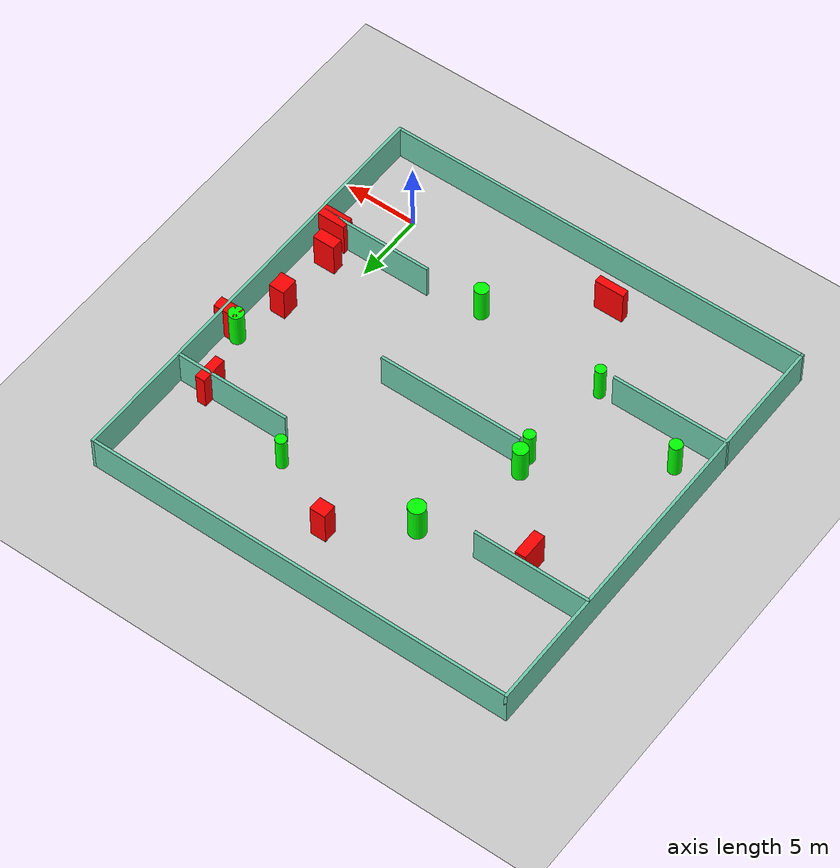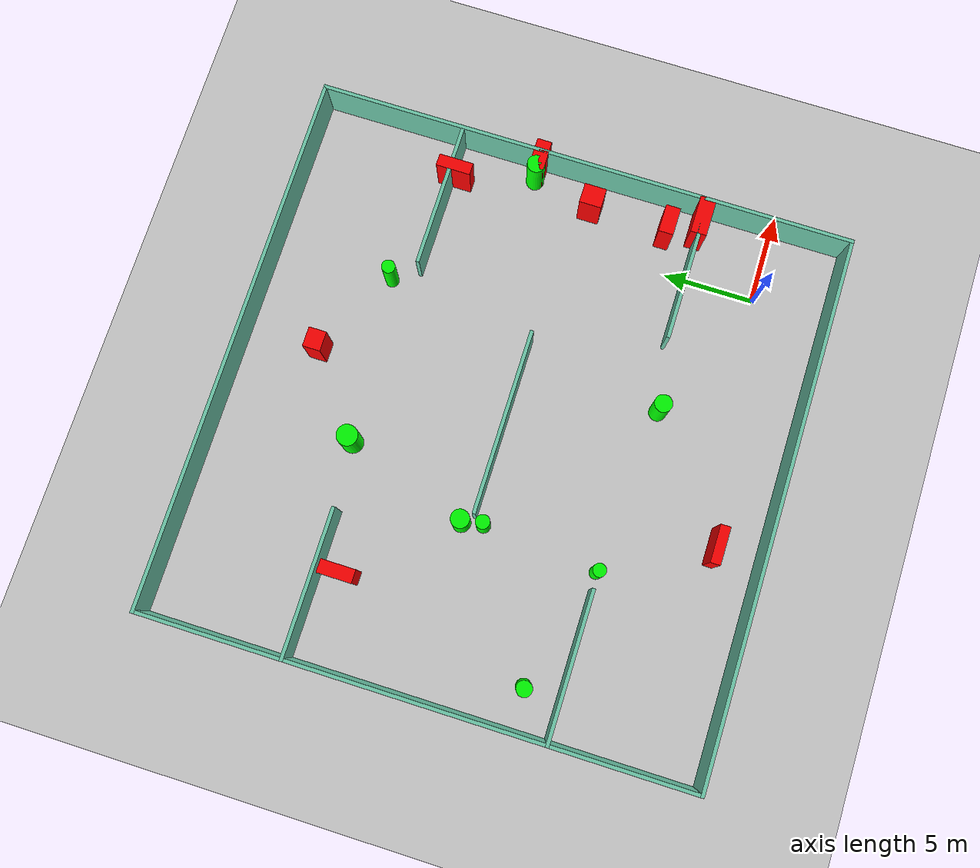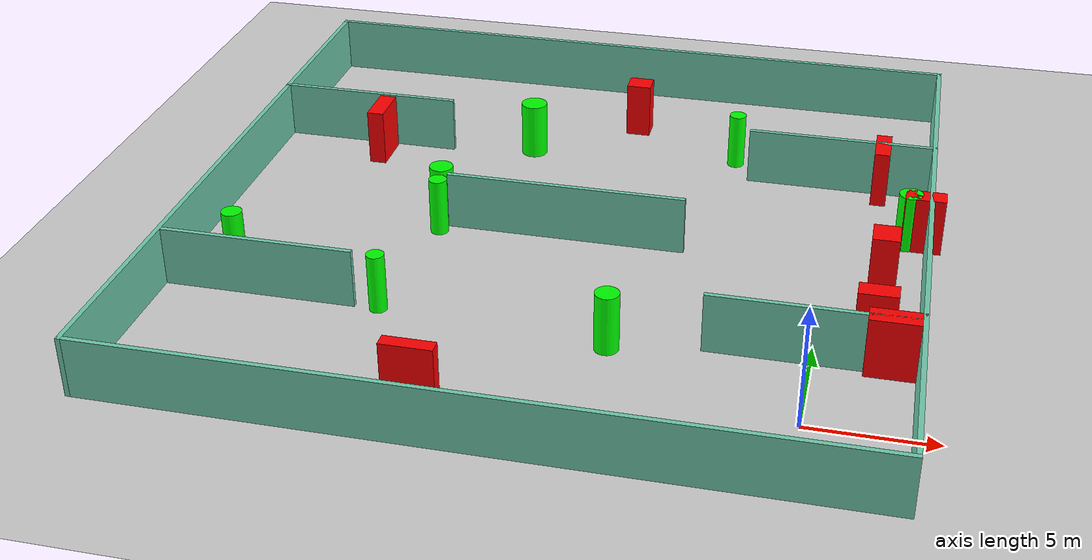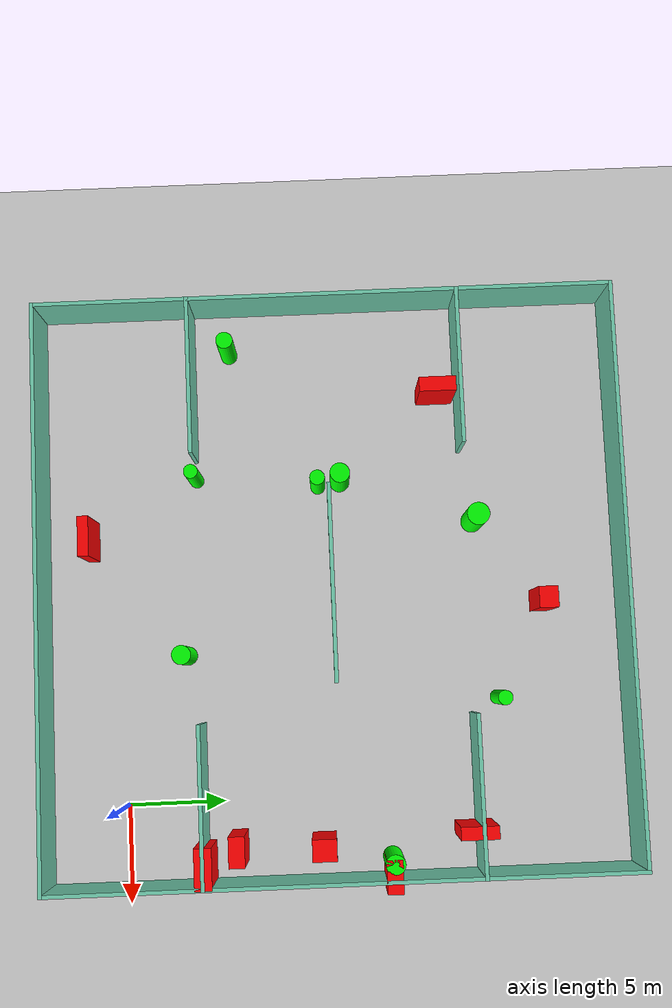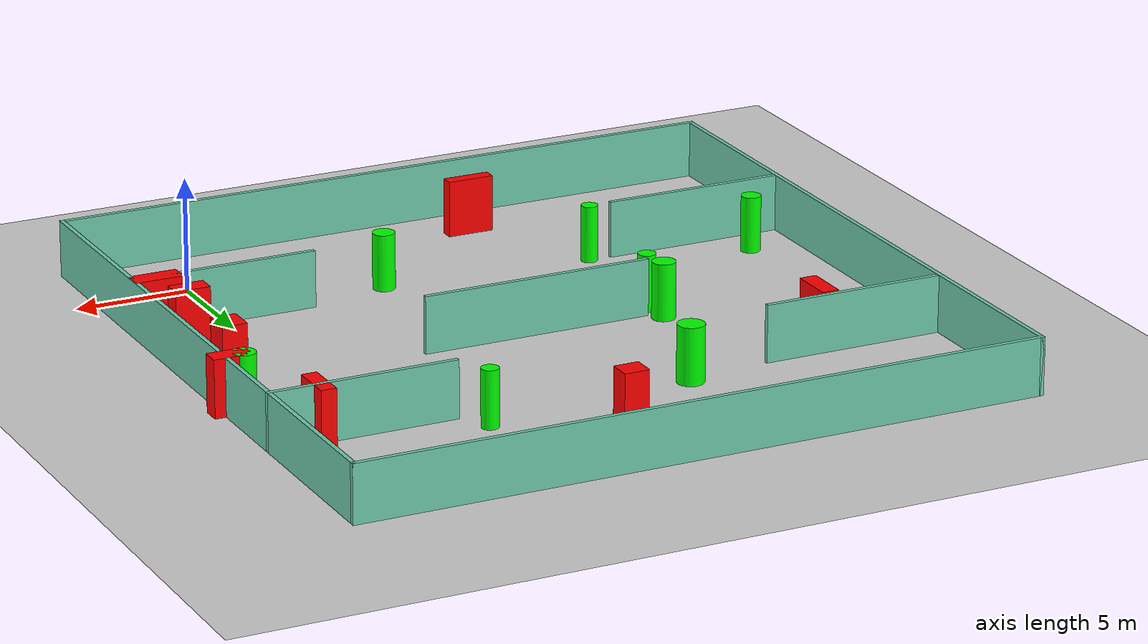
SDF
<sdf version="1.7">
 <world name="default">
  <light name="sun" type="directional">
   <pose>0 0 10 0 -0 0</pose>
   <diffuse>0.8 0.8 0.8 1</diffuse>
   <specular>0.2 0.2 0.2 1</specular>
   <attenuation>
    <range>1000</range>
    <constant>0.9</constant>
    <linear>0.01</linear>
    <quadratic>0.001</quadratic>
   </attenuation>
   <direction>-0.5 0.1 -0.9</direction>
   <spot><inner_angle>0</inner_angle><outer_angle>0</outer_angle><falloff>0</falloff></spot>
  </light>
  <model name="ground_plane">
   <static>1</static>
   <link name="link">
    <collision name="collision">
     <geometry><plane><normal>0 0 1</normal><size>100 100</size></plane></geometry>
     <surface>
      <contact><collide_bitmask>65535</collide_bitmask></contact>
      <friction><ode><mu>100</mu><mu2>50</mu2></ode></friction>
     </surface>
    </collision>
    <visual name="visual">
     <cast_shadows>0</cast_shadows>
     <geometry><plane><normal>0 0 1</normal><size>100 100</size></plane></geometry>
     <material>
      <script><uri>file://media/materials/scripts/gazebo.material</uri><name>Gazebo/Grey</name></script>
     </material>
    </visual>
   </link>
  </model>
  <gravity>0 0 -9.8</gravity>
  <magnetic_field>6e-06 2.3e-05 -4.2e-05</magnetic_field>
  <atmosphere type="adiabatic"/>
  <physics type="ode">
   <max_step_size>0.001</max_step_size>
   <real_time_factor>1</real_time_factor>
   <real_time_update_rate>1000</real_time_update_rate>
  </physics>
  <scene><ambient>0.4 0.4 0.4 1</ambient><background>0.7 0.7 0.7 1</background><shadows>1</shadows></scene>
  <spherical_coordinates>
   <surface_model>EARTH_WGS84</surface_model>
   <latitude_deg>0</latitude_deg>
   <longitude_deg>0</longitude_deg>
   <elevation>0</elevation>
   <heading_deg>0</heading_deg>
  </spherical_coordinates>
  <model name="my_base_walls">
   <link name="Wall_10">
    <collision name="Wall_10_Collision">
     <geometry><box><size>8.2 0.2 2.5</size></box></geometry>
     <pose>0 0 1.25 0 -0 0</pose>
    </collision>
    <visual name="Wall_10_Visual">
     <pose>0 0 1.25 0 -0 0</pose>
     <geometry><box><size>8.2 0.2 2.5</size></box></geometry>
     <material>
      <script><uri>file://media/materials/scripts/gazebo.material</uri><name>Gazebo/Grey</name></script>
      <ambient>0.435294 0.796078 0.67451 1</ambient>
     </material>
     <meta><layer>0</layer></meta>
    </visual>
    <pose>-11 -7 0 0 -0 0</pose>
   </link>
   <link name="Wall_12">
    <collision name="Wall_12_Collision">
     <geometry><box><size>8.2 0.2 2.5</size></box></geometry>
     <pose>0 0 1.25 0 -0 0</pose>
    </collision>
    <visual name="Wall_12_Visual">
     <pose>0 0 1.25 0 -0 0</pose>
     <geometry><box><size>8.2 0.2 2.5</size></box></geometry>
     <material>
      <script><uri>file://media/materials/scripts/gazebo.material</uri><name>Gazebo/Grey</name></script>
      <ambient>0.435294 0.796078 0.67451 1</ambient>
     </material>
     <meta><layer>0</layer></meta>
    </visual>
    <pose>-11 7 0 0 -0 0</pose>
   </link>
   <link name="Wall_14">
    <collision name="Wall_14_Collision">
     <geometry><box><size>8.2 0.2 2.5</size></box></geometry>
     <pose>0 0 1.25 0 -0 0</pose>
    </collision>
    <visual name="Wall_14_Visual">
     <pose>0 0 1.25 0 -0 0</pose>
     <geometry><box><size>8.2 0.2 2.5</size></box></geometry>
     <material>
      <script><uri>file://media/materials/scripts/gazebo.material</uri><name>Gazebo/Grey</name></script>
      <ambient>0.435294 0.796078 0.67451 1</ambient>
     </material>
     <meta><layer>0</layer></meta>
    </visual>
    <pose>11 7 0 0 -0 3.14159</pose>
   </link>
   <link name="Wall_16">
    <collision name="Wall_16_Collision">
     <geometry><box><size>10.2 0.2 2.5</size></box></geometry>
     <pose>0 0 1.25 0 -0 0</pose>
    </collision>
    <visual name="Wall_16_Visual">
     <pose>0 0 1.25 0 -0 0</pose>
     <geometry><box><size>10.2 0.2 2.5</size></box></geometry>
     <material>
      <script><uri>file://media/materials/scripts/gazebo.material</uri><name>Gazebo/Grey</name></script>
      <ambient>0.435294 0.796078 0.67451 1</ambient>
     </material>
     <meta><layer>0</layer></meta>
    </visual>
    <pose>0 0 0 0 -0 3.14159</pose>
   </link>
   <link name="Wall_2">
    <collision name="Wall_2_Collision">
     <geometry><box><size>30.2 0.2 2.5</size></box></geometry>
     <pose>0 0 1.25 0 -0 0</pose>
    </collision>
    <visual name="Wall_2_Visual">
     <pose>0 0 1.25 0 -0 0</pose>
     <geometry><box><size>30.2 0.2 2.5</size></box></geometry>
     <material>
      <script><uri>file://media/materials/scripts/gazebo.material</uri><name>Gazebo/Grey</name></script>
      <ambient>0.435294 0.796078 0.67451 1</ambient>
     </material>
     <meta><layer>0</layer></meta>
    </visual>
    <pose>0 -15 0 0 -0 3.14159</pose>
   </link>
   <link name="Wall_3">
    <collision name="Wall_3_Collision">
     <geometry><box><size>30.2 0.2 2.5</size></box></geometry>
     <pose>0 0 1.25 0 -0 0</pose>
    </collision>
    <visual name="Wall_3_Visual">
     <pose>0 0 1.25 0 -0 0</pose>
     <geometry><box><size>30.2 0.2 2.5</size></box></geometry>
     <material>
      <script><uri>file://media/materials/scripts/gazebo.material</uri><name>Gazebo/Grey</name></script>
      <ambient>0.435294 0.796078 0.67451 1</ambient>
     </material>
     <meta><layer>0</layer></meta>
    </visual>
    <pose>-15 0 0 0 -0 1.5708</pose>
   </link>
   <link name="Wall_4">
    <collision name="Wall_4_Collision">
     <geometry><box><size>30.2 0.2 2.5</size></box></geometry>
     <pose>0 0 1.25 0 -0 0</pose>
    </collision>
    <visual name="Wall_4_Visual">
     <pose>0 0 1.25 0 -0 0</pose>
     <geometry><box><size>30.2 0.2 2.5</size></box></geometry>
     <material>
      <script><uri>file://media/materials/scripts/gazebo.material</uri><name>Gazebo/Grey</name></script>
      <ambient>0.435294 0.796078 0.67451 1</ambient>
     </material>
     <meta><layer>0</layer></meta>
    </visual>
    <pose>0 15 0 0 -0 0</pose>
   </link>
   <link name="Wall_6">
    <collision name="Wall_6_Collision">
     <geometry><box><size>30.2 0.2 2.5</size></box></geometry>
     <pose>0 0 1.25 0 -0 0</pose>
    </collision>
    <visual name="Wall_6_Visual">
     <pose>0 0 1.25 0 -0 0</pose>
     <geometry><box><size>30.2 0.2 2.5</size></box></geometry>
     <material>
      <script><uri>file://media/materials/scripts/gazebo.material</uri><name>Gazebo/Grey</name></script>
      <ambient>0.435294 0.796078 0.67451 1</ambient>
     </material>
     <meta><layer>0</layer></meta>
    </visual>
    <pose>15 0 0 0 -0 1.5708</pose>
   </link>
   <link name="Wall_8">
    <collision name="Wall_8_Collision">
     <geometry><box><size>8.2 0.2 2.5</size></box></geometry>
     <pose>0 0 1.25 0 -0 0</pose>
    </collision>
    <visual name="Wall_8_Visual">
     <pose>0 0 1.25 0 -0 0</pose>
     <geometry><box><size>8.2 0.2 2.5</size></box></geometry>
     <material>
      <script><uri>file://media/materials/scripts/gazebo.material</uri><name>Gazebo/Grey</name></script>
      <ambient>0.435294 0.796078 0.67451 1</ambient>
     </material>
     <meta><layer>0</layer></meta>
    </visual>
    <pose>11 -7 0 0 -0 3.14159</pose>
   </link>
   <static>1</static>
   <pose>-11 11 0 0 -0 0</pose>
  </model>
  <model name="cylinder1">
   <static>1</static>
   <link name="link">
    <inertial>
     <mass>1</mass>
     <inertia><ixx>0.5</ixx><ixy>0</ixy><ixz>0</ixz><iyy>0.5</iyy><iyz>0</iyz><izz>1</izz></inertia>
    </inertial>
    <collision name="collision">
     <geometry><cylinder><radius>0.3881413002766359</radius><length>2.5</length></cylinder></geometry>
    </collision>
    <visual name="visual">
     <geometry><cylinder><radius>0.3881413002766359</radius><length>2.5</length></cylinder></geometry>
     <material>
      <ambient>0 1 0 1</ambient>
      <diffuse>0 1 0 1</diffuse>
      <specular>0.1 0.1 0.1 1</specular>
      <emissive>0 0 0 0</emissive>
     </material>
    </visual>
   </link>
   <pose>-16.35874190585493 10.426101154015502 1.25 0 0 0</pose>
  </model>
  <model name="cylinder2">
   <static>1</static>
   <link name="link">
    <inertial>
     <mass>1</mass>
     <inertia><ixx>0.5</ixx><ixy>0</ixy><ixz>0</ixz><iyy>0.5</iyy><iyz>0</iyz><izz>1</izz></inertia>
    </inertial>
    <collision name="collision">
     <geometry><cylinder><radius>0.4327499796527374</radius><length>2.5</length></cylinder></geometry>
    </collision>
    <visual name="visual">
     <geometry><cylinder><radius>0.4327499796527374</radius><length>2.5</length></cylinder></geometry>
     <material>
      <ambient>0 1 0 1</ambient>
      <diffuse>0 1 0 1</diffuse>
      <specular>0.1 0.1 0.1 1</specular>
      <emissive>0 0 0 0</emissive>
     </material>
    </visual>
   </link>
   <pose>-23.714060312393613 5.912770508175203 1.25 0 0 0</pose>
  </model>
  <model name="cylinder3">
   <static>1</static>
   <link name="link">
    <inertial>
     <mass>1</mass>
     <inertia><ixx>0.5</ixx><ixy>0</ixy><ixz>0</ixz><iyy>0.5</iyy><iyz>0</iyz><izz>1</izz></inertia>
    </inertial>
    <collision name="collision">
     <geometry><cylinder><radius>0.4869185384484308</radius><length>2.5</length></cylinder></geometry>
    </collision>
    <visual name="visual">
     <geometry><cylinder><radius>0.4869185384484308</radius><length>2.5</length></cylinder></geometry>
     <material>
      <ambient>0 1 0 1</ambient>
      <diffuse>0 1 0 1</diffuse>
      <specular>0.1 0.1 0.1 1</specular>
      <emissive>0 0 0 0</emissive>
     </material>
    </visual>
   </link>
   <pose>-7.607255758925625 3.254677531043164 1.25 0 0 0</pose>
  </model>
  <model name="cylinder4">
   <static>1</static>
   <link name="link">
    <inertial>
     <mass>1</mass>
     <inertia><ixx>0.5</ixx><ixy>0</ixy><ixz>0</ixz><iyy>0.5</iyy><iyz>0</iyz><izz>1</izz></inertia>
    </inertial>
    <collision name="collision">
     <geometry><cylinder><radius>0.5102809731370225</radius><length>2.5</length></cylinder></geometry>
    </collision>
    <visual name="visual">
     <geometry><cylinder><radius>0.5102809731370225</radius><length>2.5</length></cylinder></geometry>
     <material>
      <ambient>0 1 0 1</ambient>
      <diffuse>0 1 0 1</diffuse>
      <specular>0.1 0.1 0.1 1</specular>
      <emissive>0 0 0 0</emissive>
     </material>
    </visual>
   </link>
   <pose>-16.55347786573266 11.593931827103516 1.25 0 0 0</pose>
  </model>
  <model name="cylinder5">
   <static>1</static>
   <link name="link">
    <inertial>
     <mass>1</mass>
     <inertia><ixx>0.5</ixx><ixy>0</ixy><ixz>0</ixz><iyy>0.5</iyy><iyz>0</iyz><izz>1</izz></inertia>
    </inertial>
    <collision name="collision">
     <geometry><cylinder><radius>0.3643720316294379</radius><length>2.5</length></cylinder></geometry>
    </collision>
    <visual name="visual">
     <geometry><cylinder><radius>0.3643720316294379</radius><length>2.5</length></cylinder></geometry>
     <material>
      <ambient>0 1 0 1</ambient>
      <diffuse>0 1 0 1</diffuse>
      <specular>0.1 0.1 0.1 1</specular>
      <emissive>0 0 0 0</emissive>
     </material>
    </visual>
   </link>
   <pose>-16.93004989503445 3.9892255421856007 1.25 0 0 0</pose>
  </model>
  <model name="cylinder6">
   <static>1</static>
   <link name="link">
    <inertial>
     <mass>1</mass>
     <inertia><ixx>0.5</ixx><ixy>0</ixy><ixz>0</ixz><iyy>0.5</iyy><iyz>0</iyz><izz>1</izz></inertia>
    </inertial>
    <collision name="collision">
     <geometry><cylinder><radius>0.5015606259367488</radius><length>2.5</length></cylinder></geometry>
    </collision>
    <visual name="visual">
     <geometry><cylinder><radius>0.5015606259367488</radius><length>2.5</length></cylinder></geometry>
     <material>
      <ambient>0 1 0 1</ambient>
      <diffuse>0 1 0 1</diffuse>
      <specular>0.1 0.1 0.1 1</specular>
      <emissive>0 0 0 0</emissive>
     </material>
    </visual>
   </link>
   <pose>3.147734352155336 13.549495520292549 1.25 0 0 0</pose>
  </model>
  <model name="cylinder7">
   <static>1</static>
   <link name="link">
    <inertial>
     <mass>1</mass>
     <inertia><ixx>0.5</ixx><ixy>0</ixy><ixz>0</ixz><iyy>0.5</iyy><iyz>0</iyz><izz>1</izz></inertia>
    </inertial>
    <collision name="collision">
     <geometry><cylinder><radius>0.37236601596774127</radius><length>2.5</length></cylinder></geometry>
    </collision>
    <visual name="visual">
     <geometry><cylinder><radius>0.37236601596774127</radius><length>2.5</length></cylinder></geometry>
     <material>
      <ambient>0 1 0 1</ambient>
      <diffuse>0 1 0 1</diffuse>
      <specular>0.1 0.1 0.1 1</specular>
      <emissive>0 0 0 0</emissive>
     </material>
    </visual>
   </link>
   <pose>-4.820541365201159 19.39812515785937 1.25 0 0 0</pose>
  </model>
  <model name="cylinder8">
   <static>1</static>
   <link name="link">
    <inertial>
     <mass>1</mass>
     <inertia><ixx>0.5</ixx><ixy>0</ixy><ixz>0</ixz><iyy>0.5</iyy><iyz>0</iyz><izz>1</izz></inertia>
    </inertial>
    <collision name="collision">
     <geometry><cylinder><radius>0.5831527373015981</radius><length>2.5</length></cylinder></geometry>
    </collision>
    <visual name="visual">
     <geometry><cylinder><radius>0.5831527373015981</radius><length>2.5</length></cylinder></geometry>
     <material>
      <ambient>0 1 0 1</ambient>
      <diffuse>0 1 0 1</diffuse>
      <specular>0.1 0.1 0.1 1</specular>
      <emissive>0 0 0 0</emissive>
     </material>
    </visual>
   </link>
   <pose>-14.165113156428077 18.54724129263058 1.25 0 0 0</pose>
  </model>
  <model name="box1">
   <static>1</static>
   <link name="link">
    <inertial>
     <mass>1</mass>
     <inertia><ixx>0.083</ixx><ixy>0</ixy><ixz>0</ixz><iyy>0.083</iyy><iyz>0</iyz><izz>0.083</izz></inertia>
    </inertial>
    <collision name="collision">
     <geometry><box><size>1.0935978832168125 0.9808132932539759 2.5</size></box></geometry>
    </collision>
    <visual name="visual">
     <geometry><box><size>1.0935978832168125 0.9808132932539759 2.5</size></box></geometry>
     <material>
      <ambient>1 0 0 1</ambient>
      <diffuse>1 0 0 1</diffuse>
      <specular>0.1 0.1 0.1 1</specular>
      <emissive>0 0 0 0</emissive>
     </material>
    </visual>
    <sensor name="my_contact" type="contact">
     <contact><collision>box_collision</collision><topic>__default_topic__</topic></contact>
    </sensor>
   </link>
   <pose>-9.785986032230912 21.86660709886748 1.25 0 0 0</pose>
  </model>
  <model name="box2">
   <static>1</static>
   <link name="link">
    <inertial>
     <mass>1</mass>
     <inertia><ixx>0.083</ixx><ixy>0</ixy><ixz>0</ixz><iyy>0.083</iyy><iyz>0</iyz><izz>0.083</izz></inertia>
    </inertial>
    <collision name="collision">
     <geometry><box><size>2.0932632460344345 0.8841088567925497 2.5</size></box></geometry>
    </collision>
    <visual name="visual">
     <geometry><box><size>2.0932632460344345 0.8841088567925497 2.5</size></box></geometry>
     <material>
      <ambient>1 0 0 1</ambient>
      <diffuse>1 0 0 1</diffuse>
      <specular>0.1 0.1 0.1 1</specular>
      <emissive>0 0 0 0</emissive>
     </material>
    </visual>
    <sensor name="my_contact" type="contact">
     <contact><collision>box_collision</collision><topic>__default_topic__</topic></contact>
    </sensor>
   </link>
   <pose>3.006361039790459 4.030988297715947 1.25 0 0 0</pose>
  </model>
  <model name="box3">
   <static>1</static>
   <link name="link">
    <inertial>
     <mass>1</mass>
     <inertia><ixx>0.083</ixx><ixy>0</ixy><ixz>0</ixz><iyy>0.083</iyy><iyz>0</iyz><izz>0.083</izz></inertia>
    </inertial>
    <collision name="collision">
     <geometry><box><size>1.668118296507063 0.8169977263926884 2.5</size></box></geometry>
    </collision>
    <visual name="visual">
     <geometry><box><size>1.668118296507063 0.8169977263926884 2.5</size></box></geometry>
     <material>
      <ambient>1 0 0 1</ambient>
      <diffuse>1 0 0 1</diffuse>
      <specular>0.1 0.1 0.1 1</specular>
      <emissive>0 0 0 0</emissive>
     </material>
    </visual>
    <sensor name="my_contact" type="contact">
     <contact><collision>box_collision</collision><topic>__default_topic__</topic></contact>
    </sensor>
   </link>
   <pose>3.7503463770410406 13.499200407086462 1.25 0 0 0</pose>
  </model>
  <model name="box4">
   <static>1</static>
   <link name="link">
    <inertial>
     <mass>1</mass>
     <inertia><ixx>0.083</ixx><ixy>0</ixy><ixz>0</ixz><iyy>0.083</iyy><iyz>0</iyz><izz>0.083</izz></inertia>
    </inertial>
    <collision name="collision">
     <geometry><box><size>0.66493808895271 1.9202121982753533 2.5</size></box></geometry>
    </collision>
    <visual name="visual">
     <geometry><box><size>0.66493808895271 1.9202121982753533 2.5</size></box></geometry>
     <material>
      <ambient>1 0 0 1</ambient>
      <diffuse>1 0 0 1</diffuse>
      <specular>0.1 0.1 0.1 1</specular>
      <emissive>0 0 0 0</emissive>
     </material>
    </visual>
    <sensor name="my_contact" type="contact">
     <contact><collision>box_collision</collision><topic>__default_topic__</topic></contact>
    </sensor>
   </link>
   <pose>1.790915580136783 17.79028830397549 1.25 0 0 0</pose>
  </model>
  <model name="box5">
   <static>1</static>
   <link name="link">
    <inertial>
     <mass>1</mass>
     <inertia><ixx>0.083</ixx><ixy>0</ixy><ixz>0</ixz><iyy>0.083</iyy><iyz>0</iyz><izz>0.083</izz></inertia>
    </inertial>
    <collision name="collision">
     <geometry><box><size>2.0588680246372135 0.5562559740604855 2.5</size></box></geometry>
    </collision>
    <visual name="visual">
     <geometry><box><size>2.0588680246372135 0.5562559740604855 2.5</size></box></geometry>
     <material>
      <ambient>1 0 0 1</ambient>
      <diffuse>1 0 0 1</diffuse>
      <specular>0.1 0.1 0.1 1</specular>
      <emissive>0 0 0 0</emissive>
     </material>
    </visual>
    <sensor name="my_contact" type="contact">
     <contact><collision>box_collision</collision><topic>__default_topic__</topic></contact>
    </sensor>
   </link>
   <pose>-13.82837847511357 -1.562520757869772 1.25 0 0 0</pose>
  </model>
  <model name="box6">
   <static>1</static>
   <link name="link">
    <inertial>
     <mass>1</mass>
     <inertia><ixx>0.083</ixx><ixy>0</ixy><ixz>0</ixz><iyy>0.083</iyy><iyz>0</iyz><izz>0.083</izz></inertia>
    </inertial>
    <collision name="collision">
     <geometry><box><size>1.1015911169760852 1.2257693452319631 2.5</size></box></geometry>
    </collision>
    <visual name="visual">
     <geometry><box><size>1.1015911169760852 1.2257693452319631 2.5</size></box></geometry>
     <material>
      <ambient>1 0 0 1</ambient>
      <diffuse>1 0 0 1</diffuse>
      <specular>0.1 0.1 0.1 1</specular>
      <emissive>0 0 0 0</emissive>
     </material>
    </visual>
    <sensor name="my_contact" type="contact">
     <contact><collision>box_collision</collision><topic>__default_topic__</topic></contact>
    </sensor>
   </link>
   <pose>2.3185291667895243 10.071329519260026 1.25 0 0 0</pose>
  </model>
  <model name="box7">
   <static>1</static>
   <link name="link">
    <inertial>
     <mass>1</mass>
     <inertia><ixx>0.083</ixx><ixy>0</ixy><ixz>0</ixz><iyy>0.083</iyy><iyz>0</iyz><izz>0.083</izz></inertia>
    </inertial>
    <collision name="collision">
     <geometry><box><size>1.5496516549188821 0.815529479407558 2.5</size></box></geometry>
    </collision>
    <visual name="visual">
     <geometry><box><size>1.5496516549188821 0.815529479407558 2.5</size></box></geometry>
     <material>
      <ambient>1 0 0 1</ambient>
      <diffuse>1 0 0 1</diffuse>
      <specular>0.1 0.1 0.1 1</specular>
      <emissive>0 0 0 0</emissive>
     </material>
    </visual>
    <sensor name="my_contact" type="contact">
     <contact><collision>box_collision</collision><topic>__default_topic__</topic></contact>
    </sensor>
   </link>
   <pose>2.239732523310561 5.717977443219768 1.25 0 0 0</pose>
  </model>
  <model name="box8">
   <static>1</static>
   <link name="link">
    <inertial>
     <mass>1</mass>
     <inertia><ixx>0.083</ixx><ixy>0</ixy><ixz>0</ixz><iyy>0.083</iyy><iyz>0</iyz><izz>0.083</izz></inertia>
    </inertial>
    <collision name="collision">
     <geometry><box><size>0.7457014918524626 1.9045725235567896 2.5</size></box></geometry>
    </collision>
    <visual name="visual">
     <geometry><box><size>0.7457014918524626 1.9045725235567896 2.5</size></box></geometry>
     <material>
      <ambient>1 0 0 1</ambient>
      <diffuse>1 0 0 1</diffuse>
      <specular>0.1 0.1 0.1 1</specular>
      <emissive>0 0 0 0</emissive>
     </material>
    </visual>
    <sensor name="my_contact" type="contact">
     <contact><collision>box_collision</collision><topic>__default_topic__</topic></contact>
    </sensor>
   </link>
   <pose>-20.99353556262545 16.808491670707312 1.25 0 0 0</pose>
  </model>
 </world>
</sdf>
